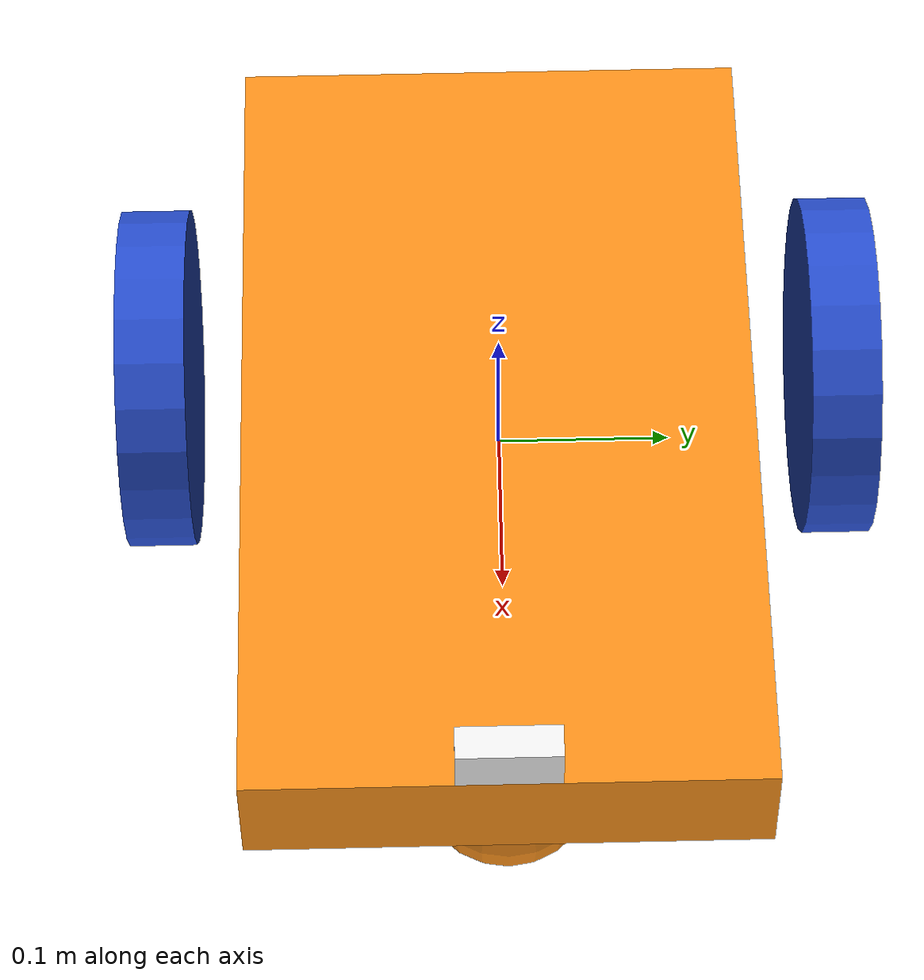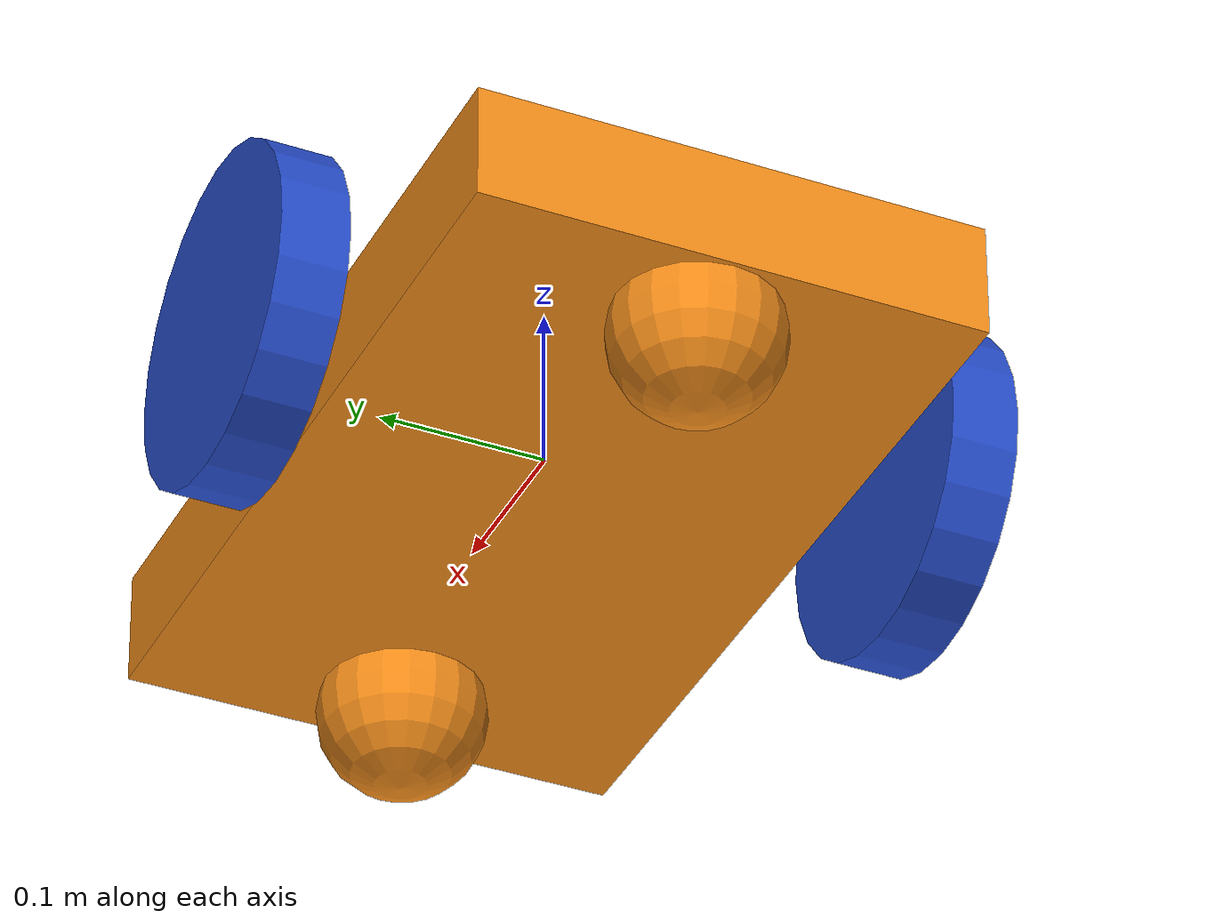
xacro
<?xml version="1.0"?>

<robot name="m2wr" xmlns:xacro="http://www.ros.org/wiki/xacro">
    <!-- inludes -->
    <xacro:include filename="$(find m2wr_description)/urdf/m2wr.gazebo" />
    <xacro:include filename="$(find m2wr_description)/urdf/wheel.xacro" />
    <xacro:include filename="$(find m2wr_description)/urdf/materials.xacro" />

    <!-- hyper parameters : camera -->
    <xacro:property name="camera_size" value="0.06"/>
    <xacro:property name="camera_origin_x" value="0.24"/>
    <xacro:property name="camera_origin_y" value="0"/>
    <xacro:property name="camera_origin_z" value="0.05"/>

    <xacro:macro name="default_inertial" params="mass">
        <inertial>
            <mass value="${mass}"/>
            <inertia ixx="1.0" ixy="0.0" ixz="0.0" iyy="1.0" iyz="0.0" izz="1.0"/>
        </inertial>
    </xacro:macro>

    <!-- main body -->
    <link name="link_chassis">

        <!-- pose and inertial -->
        <pose>0 0 0.1 0 0 0</pose>
        <inertial>
            <mass value="5"/>
            <origin rpy="0 0 0" xyz="0 0 0.1"/>
            <inertia ixx="0.0395416666667" ixy="0" ixz="0" iyy="0.106208333333" iyz="0" izz="0.106208333333"/>
        </inertial>

        <!-- body -->
        <collision name="collision_chassis">
            <geometry>
                <box size="0.5 0.3 0.07"/>
            </geometry>
        </collision>

        <!-- visual -->
        <visual>
            <origin rpy="0 0 0" xyz="0 0 0.0"/>
            <geometry>
                <box size="0.5 0.3 0.07"/>
            </geometry>
            <material name="orange"/>
        </visual>

        <!-- caster front -->
        <collision name="caster_front_collision">
            <origin rpy=" 0 0 0" xyz="0.35 0 -0.05"/>
            <geometry>
                <sphere radius="0.05"/>
            </geometry>
            <surface>
                <friction>
                    <!-- frictionless between these two surface -->
                    <ode>
                        <mu>0</mu>
                        <mu2>0</mu2>
                        <slip1>1.0</slip1>
                        <slip2>1.0</slip2>
                    </ode>
                </friction>
            </surface>
        </collision>
        <visual name="caster_front_visual">
            <origin rpy=" 0 0 0" xyz="0.2 0 -0.05"/>
            <geometry>
                <sphere radius="0.05"/>
            </geometry>
        </visual>

        <!-- caster back -->
        <collision name="caster_back_collision">
            <origin rpy=" 0 0 0" xyz="-0.35 0 -0.05"/>
            <geometry>
                <sphere radius="0.05"/>
            </geometry>
            <surface>
                <friction>
                    <!-- frictionless between these two surface -->
                    <ode>
                        <mu>0</mu>
                        <mu2>0</mu2>
                        <slip1>1.0</slip1>
                        <slip2>1.0</slip2>
                    </ode>
                </friction>
            </surface>
        </collision>
        <visual name="caster_back_visual">
            <origin rpy=" 0 0 0" xyz="-0.2 0 -0.05"/>
            <geometry>
                <sphere radius="0.05"/>
            </geometry>
        </visual>
    </link>

    <!-- sensor : link -->
    <link name="camera">
        <!-- visual -->
        <visual>
            <geometry>
                <box size="${camera_size/3} ${camera_size} ${camera_size/2}"/>
            </geometry>
        <material name="white"/>
        </visual>
        <!-- collsion -->
        <collision>
            <geometry>
                <box size="${camera_size/3} ${camera_size} ${camera_size/2}"/>
            </geometry>
        </collision>
        <xacro:default_inertial mass="0.02"/>
    </link>
    <!-- sensor : joint -->
    <joint name="camera_joint" type="fixed">
        <origin xyz="${camera_origin_x} ${camera_origin_y} ${camera_origin_z}" rpy="0 0 0"/>
        <parent link="link_chassis"/>
        <child link="camera"/>
    </joint>

    <!-- left and right wheels -->
    <xacro:link_wheel name="link_right_wheel" />
    <xacro:joint_wheel name="joint_right_wheel" child="link_right_wheel" origin_xyz="-0.05 0.20 0.0" />

    <xacro:link_wheel name="link_left_wheel" />
    <xacro:joint_wheel name="joint_left_wheel" child="link_left_wheel" origin_xyz="-0.05 -0.20 0.0" />

</robot>

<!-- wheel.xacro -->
<robot xmlns:xacro="http://www.ros.org/wiki/xacro">
    <!-- macro for link -->
    <xacro:macro name="link_wheel" params="name">
        <link name="${name}">
            <!-- inertial -->
            <inertial>
                <mass value="0.2"/>
                <origin rpy="0 1.5707 1.5707" xyz="0 0 0"/>
                <inertia ixx="0.000526666666667" ixy="0" ixz="0" iyy="0.000526666666667" iyz="0" izz="0.001"/>
            </inertial>
            <!-- collision -->
            <collision name="link_wheel_collision">
                <origin rpy="0 1.5707 1.5707" xyz="0 0 0"/>
                <geometry>
                    <cylinder length="0.04" radius="0.1"/>
                </geometry>
            </collision>
            <!-- visual -->
            <visual name="${name}_visual">
                <origin rpy="0 1.5707 1.5707" xyz="0 0 0"/>
                <geometry>
                    <cylinder length="0.04" radius="0.1"/>
                </geometry>
            </visual>
        </link>
    </xacro:macro>

    <!-- macro for joint -->
    <xacro:macro name="joint_wheel" params="name child origin_xyz">
        <joint name="${name}" type="continuous">
            <origin rpy="0 0 0" xyz="${origin_xyz}"/>
            <child link="${child}"/>
            <parent link="link_chassis"/>
            <axis rpy="0 0 0" xyz="0 1 0"/>
            <limit effort="10000" velocity="1000"/>
            <joint_properties damping="1.0" friction="1.0"/>
        </joint>
    </xacro:macro>

    <!-- macro for ... -->
    <xacro:macro name="cylinder_inertia" params="mass r l">
      <inertia  ixx="${mass*(3*r*r+l*l)/12}" ixy = "0" ixz = "0"
                iyy="${mass*(3*r*r+l*l)/12}" iyz = "0"
                izz="${mass*(r*r)/2}" />
    </xacro:macro>
</robot>
